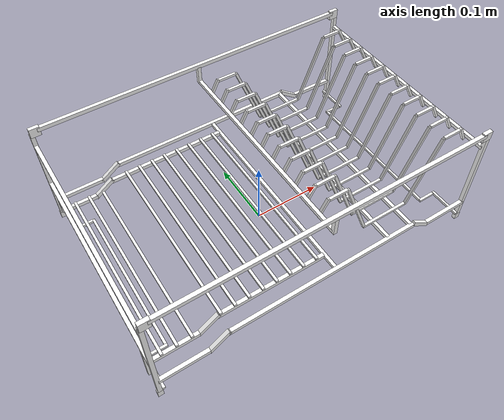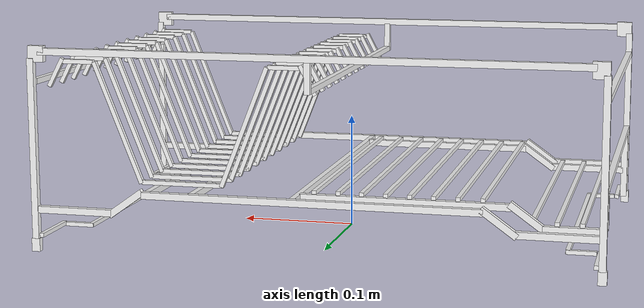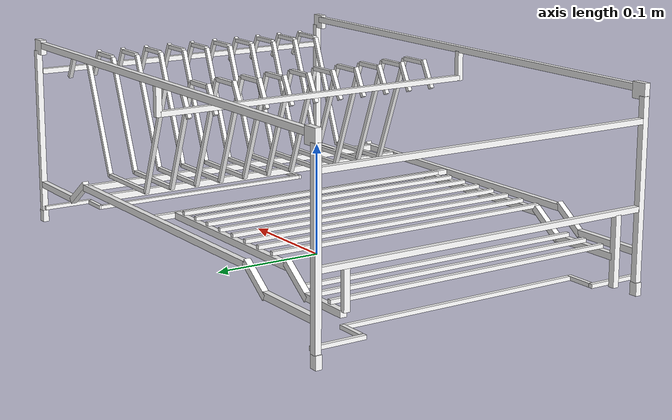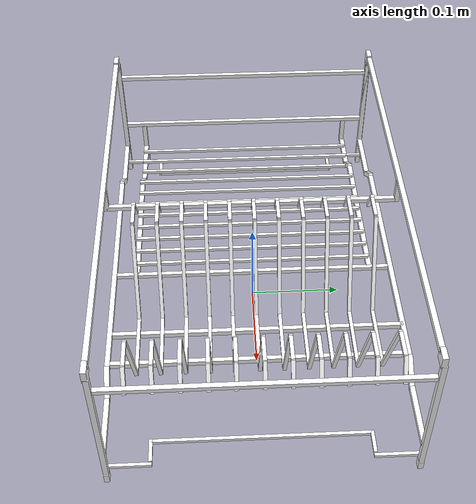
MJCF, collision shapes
<?xml version='1.0' encoding='utf-8'?>
<mujoco model="model">
  <option timestep="0.002" gravity="0.0 0.0 -9.81" />
  <compiler angle="radian" />
  <asset>
    <mesh file="visual/DishRack045.obj" name="DishRack045_vis" />
    <texture file="visual/T_BC001.png" name="DishRack045_material" type="2d" />
    <material name="DishRack045_material" rgba="1 1 1 1.0" texture="DishRack045_material" shininess="0.4472135901451111" specular="0.3103448502657381" />
  </asset>
  <default>
    <default class="visual">
      <geom conaffinity="0" contype="0" group="1" type="mesh" />
    </default>
    <default class="collision">
      <geom group="0" rgba="1 1 1 0.25" density="1.0" solref="0.004 1" solimp="0.998 0.998 0.001" />
    </default>
    <default class="spawn">
      <geom group="0" rgba="1 1 1 0.5" contype="0" conaffinity="0" />
      <site group="0" rgba="1 1 1 0.5" />
    </default>
    <default class="region">
      <geom group="1" conaffinity="0" contype="0" rgba="0 1 0 0" mass="0" />
    </default>
  </default>
  <worldbody>
    <body>
      <body name="object">
        <geom mesh="DishRack045_vis" type="mesh" solimp="0.998 0.998 0.001" solref="0.001 1" friction="0.95 0.3 0.1" class="visual" material="DishRack045_material" />
        <geom type="box" pos="-0.15568196773529053 -0.15602153539657593 0.044882532209157944" size="0.018086088821291924 0.0027107063215225935 0.002855369821190834" quat="0.9520847201347351 0.0 -0.30583450198173523 0.0" class="collision" />
        <geom type="box" pos="-0.20254582166671753 -0.15602153539657593 0.03614291921257973" size="0.033735357224941254 0.0027107063215225935 0.0028553700540214777" quat="1.0 0.0 0.0 0.0" class="collision" />
        <geom type="box" pos="-0.00020116403175052255 -0.15602153539657593 0.052649009972810745" size="0.1428707093000412 0.0027107063215225935 0.002855369821190834" quat="1.0 0.0 0.0 0.0" class="collision" />
        <geom type="box" pos="0.20346175134181976 -0.15602153539657593 0.03614291921257973" size="0.033735357224941254 0.0027107063215225935 0.0028553700540214777" quat="1.0 0.0 0.0 0.0" class="collision" />
        <geom type="box" pos="0.15659789741039276 -0.15602153539657593 0.044882532209157944" size="0.018086088821291924 0.0027107063215225935 0.002855369821190834" quat="0.9520847201347351 0.0 0.30583450198173523 0.0" class="collision" />
        <geom type="box" pos="0.15659789741039276 0.1554446667432785 0.044882532209157944" size="0.018086088821291924 0.0027107063215225935 0.002855369821190834" quat="0.9520847201347351 0.0 0.30583450198173523 0.0" class="collision" />
        <geom type="box" pos="0.20346175134181976 0.1554446667432785 0.03614291921257973" size="0.033735357224941254 0.0027107063215225935 0.0028553700540214777" quat="1.0 0.0 0.0 0.0" class="collision" />
        <geom type="box" pos="-0.00020116403175052255 0.1554446667432785 0.052649009972810745" size="0.1428707093000412 0.0027107063215225935 0.002855369821190834" quat="1.0 0.0 0.0 0.0" class="collision" />
        <geom type="box" pos="-0.20254582166671753 0.1554446667432785 0.03614291921257973" size="0.033735357224941254 0.0027107063215225935 0.0028553700540214777" quat="1.0 0.0 0.0 0.0" class="collision" />
        <geom type="box" pos="-0.15568196773529053 0.1554446667432785 0.044882532209157944" size="0.018086088821291924 0.0027107063215225935 0.002855369821190834" quat="0.9520847201347351 0.0 -0.30583450198173523 0.0" class="collision" />
        <geom type="box" pos="-0.06509390473365784 -0.13054312765598297 0.052649009972810745" size="0.0779779776930809 0.0027107063215225935 0.002855369821190834" quat="1.0 0.0 0.0 0.0" class="collision" />
        <geom type="box" pos="-0.2374083250761032 -0.13054312765598297 0.04092910885810852" size="0.0028117720503360033 0.0027107063215225935 0.030211511999368668" quat="1.0 0.0 0.0 0.0" class="collision" />
        <geom type="box" pos="-0.15568196773529053 -0.13054312765598297 0.044882532209157944" size="0.018086088821291924 0.0027107063215225935 0.002855369821190834" quat="0.9520847201347351 0.0 -0.30583450198173523 0.0" class="collision" />
        <geom type="box" pos="0.10011906176805496 0.0004364773049019277 0.052649009972810745" size="0.0024701603688299656 0.15511955320835114 0.002855369821190834" quat="1.0 0.0 0.0 0.0" class="collision" />
        <geom type="box" pos="0.000725413381587714 -0.00044235959649086 0.05699136108160019" size="0.001849686843343079 0.13268692791461945 0.0017084331484511495" quat="1.0 0.0 0.0 0.0" class="collision" />
        <geom type="box" pos="-0.01939462311565876 -0.00044235959649086 0.05699136108160019" size="0.001849686843343079 0.13268692791461945 0.0017084331484511495" quat="1.0 0.0 0.0 0.0" class="collision" />
        <geom type="box" pos="-0.03928738832473755 -0.00044235959649086 0.05699136108160019" size="0.001849686843343079 0.13268692791461945 0.0017084331484511495" quat="1.0 0.0 0.0 0.0" class="collision" />
        <geom type="box" pos="-0.05940578132867813 -0.00044235959649086 0.05699136108160019" size="0.001849686843343079 0.13268692791461945 0.0017084331484511495" quat="1.0 0.0 0.0 0.0" class="collision" />
        <geom type="box" pos="-0.11919689923524857 -0.00044235959649086 0.05699136108160019" size="0.001849686843343079 0.13268692791461945 0.0017084331484511495" quat="1.0 0.0 0.0 0.0" class="collision" />
        <geom type="box" pos="-0.13935290277004242 -0.00044235959649086 0.05699136108160019" size="0.001849686843343079 0.13268692791461945 0.0017084331484511495" quat="1.0 0.0 0.0 0.0" class="collision" />
        <geom type="box" pos="-0.09927290678024292 -0.00044235959649086 0.05699136108160019" size="0.001849686843343079 0.13268692791461945 0.0017084331484511495" quat="1.0 0.0 0.0 0.0" class="collision" />
        <geom type="box" pos="-0.07945535331964493 -0.00044235959649086 0.05699136108160019" size="0.001849686843343079 0.13268692791461945 0.0017084331484511495" quat="1.0 0.0 0.0 0.0" class="collision" />
        <geom type="box" pos="-0.17887678742408752 -0.00044235959649086 0.04069424420595169" size="0.001849686843343079 0.13268692791461945 0.0017084331484511495" quat="1.0 0.0 0.0 0.0" class="collision" />
        <geom type="box" pos="-0.1992286890745163 -0.00044235959649086 0.04069424420595169" size="0.001849686843343079 0.13268692791461945 0.0017084331484511495" quat="1.0 0.0 0.0 0.0" class="collision" />
        <geom type="box" pos="-0.2375185787677765 -0.0010273384395986795 0.07282046973705292" size="0.0025548783596605062 0.15397219359874725 0.0023582393769174814" quat="1.0 0.0 0.0 0.0" class="collision" />
        <geom type="box" pos="0.13865801692008972 0.0004364773049019277 0.052649009972810745" size="0.0024701603688299656 0.15511955320835114 0.002855369821190834" quat="1.0 0.0 0.0 0.0" class="collision" />
        <geom type="box" pos="0.014439096674323082 -0.0002888697199523449 0.05284624174237251" size="0.0024363165721297264 0.15486814081668854 0.002249937504529953" quat="1.0 0.0 0.0 0.0" class="collision" />
        <geom type="box" pos="-0.17545928061008453 0.1313437819480896 0.044882532209157944" size="0.018086088821291924 0.0027107063215225935 0.002855369821190834" quat="0.9520847201347351 0.0 -0.30583450198173523 0.0" class="collision" />
        <geom type="box" pos="-0.21191519498825073 0.1313437819480896 0.03614291921257973" size="0.024365978315472603 0.0027107063215225935 0.0028553700540214777" quat="1.0 0.0 0.0 0.0" class="collision" />
        <geom type="box" pos="-0.07476115971803665 0.1313437819480896 0.052649009972810745" size="0.08764524757862091 0.0027107063215225935 0.002855369821190834" quat="1.0 0.0 0.0 0.0" class="collision" />
        <geom type="box" pos="-0.20254582166671753 -0.13054312765598297 0.03614291921257973" size="0.033735357224941254 0.0027107063215225935 0.0028553700540214777" quat="1.0 0.0 0.0 0.0" class="collision" />
        <geom type="box" pos="-0.23764225840568542 0.13045234978199005 0.054561614990234375" size="0.002016407670453191 0.0027107063215225935 0.016801709309220314" quat="1.0 0.0 0.0 0.0" class="collision" />
        <geom type="box" pos="-0.2374083250761032 0.15537798404693604 0.08770491182804108" size="0.0028117720503360033 0.0027107063215225935 0.07698731124401093" quat="1.0 0.0 0.0 0.0" class="collision" />
        <geom type="box" pos="-0.23752114176750183 0.15537798404693604 0.005344472825527191" size="0.003646594937890768 0.0027107063215225935 0.00560336047783494" quat="1.0 0.0 0.0 0.0" class="collision" />
        <geom type="box" pos="-0.21942463517189026 -0.00044235959649086 0.04069424420595169" size="0.001849686843343079 0.13268692791461945 0.0017084331484511495" quat="1.0 0.0 0.0 0.0" class="collision" />
        <geom type="box" pos="-0.2375185787677765 -0.0010273384395986795 0.14493751525878906" size="0.0025548783596605062 0.15397219359874725 0.0023582393769174814" quat="1.0 0.0 0.0 0.0" class="collision" />
        <geom type="box" pos="-0.23752114176750183 -0.15517286956310272 0.005344472825527191" size="0.003646594937890768 0.0027107063215225935 0.00560336047783494" quat="1.0 0.0 0.0 0.0" class="collision" />
        <geom type="box" pos="-0.2374083250761032 -0.15517286956310272 0.08770491182804108" size="0.0028117720503360033 0.0027107063215225935 0.07698731124401093" quat="1.0 0.0 0.0 0.0" class="collision" />
        <geom type="box" pos="0.2068399339914322 2.6039342628791928e-05 0.01369159109890461" size="0.001849686843343079 0.11188419908285141 0.0017084331484511495" quat="1.0 0.0 0.0 0.0" class="collision" />
        <geom type="box" pos="0.23303094506263733 0.1332913041114807 0.01369159109890461" size="0.0018061837181448936 0.02378370426595211 0.0017084331484511495" quat="1.0 0.0 0.0 0.0" class="collision" />
        <geom type="box" pos="0.21770724654197693 0.11138457804918289 0.01369159109890461" size="0.012554915621876717 0.0018769720336422324 0.0017084331484511495" quat="1.0 0.0 0.0 0.0" class="collision" />
        <geom type="box" pos="0.21770724654197693 -0.11233498156070709 0.01369159109890461" size="0.012554915621876717 0.0018769720336422324 0.0017084331484511495" quat="1.0 0.0 0.0 0.0" class="collision" />
        <geom type="box" pos="0.23272615671157837 -0.1342417150735855 0.01369159109890461" size="0.0018061837181448936 0.02378370426595211 0.0017084331484511495" quat="1.0 0.0 0.0 0.0" class="collision" />
        <geom type="box" pos="0.0011288374662399292 -0.15602153539657593 0.17055276036262512" size="0.23039209842681885 0.0027107063215225935 0.0028553700540214777" quat="1.0 0.0 0.0 0.0" class="collision" />
        <geom type="box" pos="-0.23260191082954407 -0.15602153539657593 0.16850821673870087" size="0.006894007325172424 0.0027107063215225935 0.006776891648769379" quat="1.0 0.0 0.0 0.0" class="collision" />
        <geom type="box" pos="0.20913073420524597 -0.12508100271224976 0.15891127288341522" size="0.013732441700994968 0.0018984470516443253 0.0017994295340031385" quat="1.0 0.0 0.0 0.0" class="collision" />
        <geom type="box" pos="0.22949133813381195 -0.12508100271224976 0.1490558683872223" size="0.013732441700994968 0.0018984470516443253 0.0017994295340031385" quat="0.8563479781150818 0.0 0.5163992047309875 0.0" class="collision" />
        <geom type="box" pos="0.17433014512062073 -0.12508100271224976 0.10749302059412003" size="0.0018487810157239437 0.0018984470516443253 0.055157992988824844" quat="0.9823158979415894 0.0 0.18723121285438538 0.0" class="collision" />
        <geom type="box" pos="0.1177007332444191 -0.12508100271224976 0.05723894387483597" size="0.03600260615348816 0.0018984470516443253 0.0017994295340031385" quat="1.0 0.0 0.0 0.0" class="collision" />
        <geom type="box" pos="0.06260105967521667 -0.12508100271224976 0.10749302059412003" size="0.0018487810157239437 0.0018984470516443253 0.055157992988824844" quat="0.9823158979415894 0.0 -0.18723121285438538 0.0" class="collision" />
        <geom type="box" pos="0.007439862936735153 -0.12508100271224976 0.1490558683872223" size="0.013732441700994968 0.0018984470516443253 0.0017994295340031385" quat="0.8563479781150818 0.0 -0.5163992047309875 0.0" class="collision" />
        <geom type="box" pos="0.027800459414720535 -0.12508100271224976 0.15891127288341522" size="0.013732441700994968 0.0018984470516443253 0.0017994295340031385" quat="1.0 0.0 0.0 0.0" class="collision" />
        <geom type="box" pos="0.027800459414720535 -0.10022387653589249 0.15891127288341522" size="0.013732441700994968 0.0018984470516443253 0.0017994295340031385" quat="1.0 0.0 0.0 0.0" class="collision" />
        <geom type="box" pos="0.007439862936735153 -0.10022387653589249 0.1490558683872223" size="0.013732441700994968 0.0018984470516443253 0.0017994295340031385" quat="0.8563479781150818 0.0 -0.5163992047309875 0.0" class="collision" />
        <geom type="box" pos="0.06260105967521667 -0.10022387653589249 0.10749302059412003" size="0.0018487810157239437 0.0018984470516443253 0.055157992988824844" quat="0.9823158979415894 0.0 -0.18723121285438538 0.0" class="collision" />
        <geom type="box" pos="0.1177007332444191 -0.10022387653589249 0.05723894387483597" size="0.03600260615348816 0.0018984470516443253 0.0017994295340031385" quat="1.0 0.0 0.0 0.0" class="collision" />
        <geom type="box" pos="0.17433014512062073 -0.10022387653589249 0.10749302059412003" size="0.0018487810157239437 0.0018984470516443253 0.055157992988824844" quat="0.9823158979415894 0.0 0.18723121285438538 0.0" class="collision" />
        <geom type="box" pos="0.22949133813381195 -0.10022387653589249 0.1490558683872223" size="0.013732441700994968 0.0018984470516443253 0.0017994295340031385" quat="0.8563479781150818 0.0 0.5163992047309875 0.0" class="collision" />
        <geom type="box" pos="0.20913073420524597 -0.10022387653589249 0.15891127288341522" size="0.013732441700994968 0.0018984470516443253 0.0017994295340031385" quat="1.0 0.0 0.0 0.0" class="collision" />
        <geom type="box" pos="0.20913073420524597 -0.07502677291631699 0.15891127288341522" size="0.013732441700994968 0.0018984470516443253 0.0017994295340031385" quat="1.0 0.0 0.0 0.0" class="collision" />
        <geom type="box" pos="0.22949133813381195 -0.07502677291631699 0.1490558683872223" size="0.013732441700994968 0.0018984470516443253 0.0017994295340031385" quat="0.8563479781150818 0.0 0.5163992047309875 0.0" class="collision" />
        <geom type="box" pos="0.17433014512062073 -0.07502677291631699 0.10749302059412003" size="0.0018487810157239437 0.0018984470516443253 0.055157992988824844" quat="0.9823158979415894 0.0 0.18723121285438538 0.0" class="collision" />
        <geom type="box" pos="0.1177007332444191 -0.07502677291631699 0.05723894387483597" size="0.03600260615348816 0.0018984470516443253 0.0017994295340031385" quat="1.0 0.0 0.0 0.0" class="collision" />
        <geom type="box" pos="0.06260105967521667 -0.07502677291631699 0.10749302059412003" size="0.0018487810157239437 0.0018984470516443253 0.055157992988824844" quat="0.9823158979415894 0.0 -0.18723121285438538 0.0" class="collision" />
        <geom type="box" pos="0.007439862936735153 -0.07502677291631699 0.1490558683872223" size="0.013732441700994968 0.0018984470516443253 0.0017994295340031385" quat="0.8563479781150818 0.0 -0.5163992047309875 0.0" class="collision" />
        <geom type="box" pos="0.027800459414720535 -0.07502677291631699 0.15891127288341522" size="0.013732441700994968 0.0018984470516443253 0.0017994295340031385" quat="1.0 0.0 0.0 0.0" class="collision" />
        <geom type="box" pos="0.027800459414720535 -0.05009915679693222 0.15891127288341522" size="0.013732441700994968 0.0018984470516443253 0.0017994295340031385" quat="1.0 0.0 0.0 0.0" class="collision" />
        <geom type="box" pos="0.007439862936735153 -0.05009915679693222 0.1490558683872223" size="0.013732441700994968 0.0018984470516443253 0.0017994295340031385" quat="0.8563479781150818 0.0 -0.5163992047309875 0.0" class="collision" />
        <geom type="box" pos="0.06260105967521667 -0.05009915679693222 0.10749302059412003" size="0.0018487810157239437 0.0018984470516443253 0.055157992988824844" quat="0.9823158979415894 0.0 -0.18723121285438538 0.0" class="collision" />
        <geom type="box" pos="0.1177007332444191 -0.05009915679693222 0.05723894387483597" size="0.03600260615348816 0.0018984470516443253 0.0017994295340031385" quat="1.0 0.0 0.0 0.0" class="collision" />
        <geom type="box" pos="0.17433014512062073 -0.05009915679693222 0.10749302059412003" size="0.0018487810157239437 0.0018984470516443253 0.055157992988824844" quat="0.9823158979415894 0.0 0.18723121285438538 0.0" class="collision" />
        <geom type="box" pos="0.22949133813381195 -0.05009915679693222 0.1490558683872223" size="0.013732441700994968 0.0018984470516443253 0.0017994295340031385" quat="0.8563479781150818 0.0 0.5163992047309875 0.0" class="collision" />
        <geom type="box" pos="0.20913073420524597 -0.05009915679693222 0.15891127288341522" size="0.013732441700994968 0.0018984470516443253 0.0017994295340031385" quat="1.0 0.0 0.0 0.0" class="collision" />
        <geom type="box" pos="0.20913073420524597 -0.025306282564997673 0.15891127288341522" size="0.013732441700994968 0.0018984470516443253 0.0017994295340031385" quat="1.0 0.0 0.0 0.0" class="collision" />
        <geom type="box" pos="0.22949133813381195 -0.025306282564997673 0.1490558683872223" size="0.013732441700994968 0.0018984470516443253 0.0017994295340031385" quat="0.8563479781150818 0.0 0.5163992047309875 0.0" class="collision" />
        <geom type="box" pos="0.17433014512062073 -0.025306284427642822 0.10749302059412003" size="0.0018487810157239437 0.0018984470516443253 0.055157992988824844" quat="0.9823158979415894 0.0 0.18723121285438538 0.0" class="collision" />
        <geom type="box" pos="0.1177007332444191 -0.025306282564997673 0.05723894387483597" size="0.03600260615348816 0.0018984470516443253 0.0017994295340031385" quat="1.0 0.0 0.0 0.0" class="collision" />
        <geom type="box" pos="0.06260105967521667 -0.025306284427642822 0.10749302059412003" size="0.0018487810157239437 0.0018984470516443253 0.055157992988824844" quat="0.9823158979415894 0.0 -0.18723121285438538 0.0" class="collision" />
        <geom type="box" pos="0.007439862936735153 -0.025306284427642822 0.1490558683872223" size="0.013732441700994968 0.0018984470516443253 0.0017994295340031385" quat="0.8563479781150818 0.0 -0.5163992047309875 0.0" class="collision" />
        <geom type="box" pos="0.027800459414720535 -0.025306284427642822 0.15891127288341522" size="0.013732441700994968 0.0018984470516443253 0.0017994295340031385" quat="1.0 0.0 0.0 0.0" class="collision" />
        <geom type="box" pos="0.027800459414720535 2.5561079382896423e-05 0.15891127288341522" size="0.013732441700994968 0.0018984470516443253 0.0017994295340031385" quat="1.0 0.0 0.0 0.0" class="collision" />
        <geom type="box" pos="0.007439862936735153 2.5561079382896423e-05 0.1490558683872223" size="0.013732441700994968 0.0018984470516443253 0.0017994295340031385" quat="0.8563479781150818 0.0 -0.5163992047309875 0.0" class="collision" />
        <geom type="box" pos="0.06260105967521667 2.5561079382896423e-05 0.10749302059412003" size="0.0018487810157239437 0.0018984470516443253 0.055157992988824844" quat="0.9823158979415894 0.0 -0.18723121285438538 0.0" class="collision" />
        <geom type="box" pos="0.1177007332444191 2.5562019800418057e-05 0.05723894387483597" size="0.03600260615348816 0.0018984470516443253 0.0017994295340031385" quat="1.0 0.0 0.0 0.0" class="collision" />
        <geom type="box" pos="0.17433014512062073 2.5561079382896423e-05 0.10749302059412003" size="0.0018487810157239437 0.0018984470516443253 0.055157992988824844" quat="0.9823158979415894 0.0 0.18723121285438538 0.0" class="collision" />
        <geom type="box" pos="0.22949133813381195 2.5562019800418057e-05 0.1490558683872223" size="0.013732441700994968 0.0018984470516443253 0.0017994295340031385" quat="0.8563479781150818 0.0 0.5163992047309875 0.0" class="collision" />
        <geom type="box" pos="0.20913073420524597 2.5562019800418057e-05 0.15891127288341522" size="0.013732441700994968 0.0018984470516443253 0.0017994295340031385" quat="1.0 0.0 0.0 0.0" class="collision" />
        <geom type="box" pos="0.20913073420524597 0.02495317906141281 0.15891127288341522" size="0.013732441700994968 0.0018984470516443253 0.0017994295340031385" quat="1.0 0.0 0.0 0.0" class="collision" />
        <geom type="box" pos="0.22949133813381195 0.02495317906141281 0.1490558683872223" size="0.013732441700994968 0.0018984470516443253 0.0017994295340031385" quat="0.8563479781150818 0.0 0.5163992047309875 0.0" class="collision" />
        <geom type="box" pos="0.17433014512062073 0.024953177198767662 0.10749302059412003" size="0.0018487810157239437 0.0018984470516443253 0.055157992988824844" quat="0.9823158979415894 0.0 0.18723121285438538 0.0" class="collision" />
        <geom type="box" pos="0.1177007332444191 0.02495317906141281 0.05723894387483597" size="0.03600260615348816 0.0018984470516443253 0.0017994295340031385" quat="1.0 0.0 0.0 0.0" class="collision" />
        <geom type="box" pos="0.06260105967521667 0.024953177198767662 0.10749302059412003" size="0.0018487810157239437 0.0018984470516443253 0.055157992988824844" quat="0.9823158979415894 0.0 -0.18723121285438538 0.0" class="collision" />
        <geom type="box" pos="0.007439862936735153 0.024953177198767662 0.1490558683872223" size="0.013732441700994968 0.0018984470516443253 0.0017994295340031385" quat="0.8563479781150818 0.0 -0.5163992047309875 0.0" class="collision" />
        <geom type="box" pos="0.027800459414720535 0.024953177198767662 0.15891127288341522" size="0.013732441700994968 0.0018984470516443253 0.0017994295340031385" quat="1.0 0.0 0.0 0.0" class="collision" />
        <geom type="box" pos="0.027800459414720535 0.05015027895569801 0.15891127288341522" size="0.013732441700994968 0.0018984470516443253 0.0017994295340031385" quat="1.0 0.0 0.0 0.0" class="collision" />
        <geom type="box" pos="0.007439862936735153 0.05015027895569801 0.1490558683872223" size="0.013732441700994968 0.0018984470516443253 0.0017994295340031385" quat="0.8563479781150818 0.0 -0.5163992047309875 0.0" class="collision" />
        <geom type="box" pos="0.06260105967521667 0.05015027895569801 0.10749302059412003" size="0.0018487810157239437 0.0018984470516443253 0.055157992988824844" quat="0.9823158979415894 0.0 -0.18723121285438538 0.0" class="collision" />
        <geom type="box" pos="0.1177007332444191 0.05015027895569801 0.05723894387483597" size="0.03600260615348816 0.0018984470516443253 0.0017994295340031385" quat="1.0 0.0 0.0 0.0" class="collision" />
        <geom type="box" pos="0.17433014512062073 0.05015027895569801 0.10749302059412003" size="0.0018487810157239437 0.0018984470516443253 0.055157992988824844" quat="0.9823158979415894 0.0 0.18723121285438538 0.0" class="collision" />
        <geom type="box" pos="0.22949133813381195 0.05015027895569801 0.1490558683872223" size="0.013732441700994968 0.0018984470516443253 0.0017994295340031385" quat="0.8563479781150818 0.0 0.5163992047309875 0.0" class="collision" />
        <geom type="box" pos="0.20913073420524597 0.05015027895569801 0.15891127288341522" size="0.013732441700994968 0.0018984470516443253 0.0017994295340031385" quat="1.0 0.0 0.0 0.0" class="collision" />
        <geom type="box" pos="0.20913073420524597 0.07494315505027771 0.15891127288341522" size="0.013732441700994968 0.0018984470516443253 0.0017994295340031385" quat="1.0 0.0 0.0 0.0" class="collision" />
        <geom type="box" pos="0.22949133813381195 0.07494315505027771 0.1490558683872223" size="0.013732441700994968 0.0018984470516443253 0.0017994295340031385" quat="0.8563479781150818 0.0 0.5163992047309875 0.0" class="collision" />
        <geom type="box" pos="0.17433014512062073 0.07494315505027771 0.10749302059412003" size="0.0018487810157239437 0.0018984470516443253 0.055157992988824844" quat="0.9823158979415894 0.0 0.18723121285438538 0.0" class="collision" />
        <geom type="box" pos="0.1177007332444191 0.07494315505027771 0.05723894387483597" size="0.03600260615348816 0.0018984470516443253 0.0017994295340031385" quat="1.0 0.0 0.0 0.0" class="collision" />
        <geom type="box" pos="0.06260105967521667 0.07494315505027771 0.10749302059412003" size="0.0018487810157239437 0.0018984470516443253 0.055157992988824844" quat="0.9823158979415894 0.0 -0.18723121285438538 0.0" class="collision" />
        <geom type="box" pos="0.007439862936735153 0.07494315505027771 0.1490558683872223" size="0.013732441700994968 0.0018984470516443253 0.0017994295340031385" quat="0.8563479781150818 0.0 -0.5163992047309875 0.0" class="collision" />
        <geom type="box" pos="0.027800459414720535 0.07494315505027771 0.15891127288341522" size="0.013732441700994968 0.0018984470516443253 0.0017994295340031385" quat="1.0 0.0 0.0 0.0" class="collision" />
        <geom type="box" pos="0.027800459414720535 0.09987077116966248 0.15891127288341522" size="0.013732441700994968 0.0018984470516443253 0.0017994295340031385" quat="1.0 0.0 0.0 0.0" class="collision" />
        <geom type="box" pos="0.007439862936735153 0.09987077116966248 0.1490558683872223" size="0.013732441700994968 0.0018984470516443253 0.0017994295340031385" quat="0.8563479781150818 0.0 -0.5163992047309875 0.0" class="collision" />
        <geom type="box" pos="0.06260105967521667 0.09987077116966248 0.10749302059412003" size="0.0018487810157239437 0.0018984470516443253 0.055157992988824844" quat="0.9823158979415894 0.0 -0.18723121285438538 0.0" class="collision" />
        <geom type="box" pos="0.1177007332444191 0.09987077116966248 0.05723894387483597" size="0.03600260615348816 0.0018984470516443253 0.0017994295340031385" quat="1.0 0.0 0.0 0.0" class="collision" />
        <geom type="box" pos="0.17433014512062073 0.09987077116966248 0.10749302059412003" size="0.0018487810157239437 0.0018984470516443253 0.055157992988824844" quat="0.9823158979415894 0.0 0.18723121285438538 0.0" class="collision" />
        <geom type="box" pos="0.22949133813381195 0.09987077116966248 0.1490558683872223" size="0.013732441700994968 0.0018984470516443253 0.0017994295340031385" quat="0.8563479781150818 0.0 0.5163992047309875 0.0" class="collision" />
        <geom type="box" pos="0.20913073420524597 0.09987077116966248 0.15891127288341522" size="0.013732441700994968 0.0018984470516443253 0.0017994295340031385" quat="1.0 0.0 0.0 0.0" class="collision" />
        <geom type="box" pos="0.20913073420524597 0.12506787478923798 0.15891127288341522" size="0.013732441700994968 0.0018984470516443253 0.0017994295340031385" quat="1.0 0.0 0.0 0.0" class="collision" />
        <geom type="box" pos="0.22949133813381195 0.12506787478923798 0.1490558683872223" size="0.013732441700994968 0.0018984470516443253 0.0017994295340031385" quat="0.8563479781150818 0.0 0.5163992047309875 0.0" class="collision" />
        <geom type="box" pos="0.17433014512062073 0.12506787478923798 0.10749302059412003" size="0.0018487810157239437 0.0018984470516443253 0.055157992988824844" quat="0.9823158979415894 0.0 0.18723121285438538 0.0" class="collision" />
        <geom type="box" pos="0.1177007332444191 0.12506787478923798 0.05723894387483597" size="0.03600260615348816 0.0018984470516443253 0.0017994295340031385" quat="1.0 0.0 0.0 0.0" class="collision" />
        <geom type="box" pos="0.06260105967521667 0.12506787478923798 0.10749302059412003" size="0.0018487810157239437 0.0018984470516443253 0.055157992988824844" quat="0.9823158979415894 0.0 -0.18723121285438538 0.0" class="collision" />
        <geom type="box" pos="0.007439862936735153 0.12506787478923798 0.1490558683872223" size="0.013732441700994968 0.0018984470516443253 0.0017994295340031385" quat="0.8563479781150818 0.0 -0.5163992047309875 0.0" class="collision" />
        <geom type="box" pos="0.027800459414720535 0.12506787478923798 0.15891127288341522" size="0.013732441700994968 0.0018984470516443253 0.0017994295340031385" quat="1.0 0.0 0.0 0.0" class="collision" />
        <geom type="box" pos="-6.252899765968323e-06 -0.0010273384395986795 0.14409276843070984" size="0.0025548783596605062 0.15397219359874725 0.0023582393769174814" quat="1.0 0.0 0.0 0.0" class="collision" />
        <geom type="box" pos="-6.252899765968323e-06 -0.15546384453773499 0.1553255170583725" size="0.0025548783596605062 0.002627863083034754 0.013590995222330093" quat="1.0 0.0 0.0 0.0" class="collision" />
        <geom type="box" pos="-6.2530170907848515e-06 0.1544990986585617 0.1553255170583725" size="0.0025548783596605062 0.002627863083034754 0.013590995222330093" quat="1.0 0.0 0.0 0.0" class="collision" />
        <geom type="box" pos="0.23322182893753052 -0.15602153539657593 0.16850821673870087" size="0.006894007325172424 0.0027107063215225935 0.006776891648769379" quat="1.0 0.0 0.0 0.0" class="collision" />
        <geom type="box" pos="0.23802824318408966 -0.15517286956310272 0.08770491182804108" size="0.0028117720503360033 0.0027107063215225935 0.07698731124401093" quat="1.0 0.0 0.0 0.0" class="collision" />
        <geom type="box" pos="0.23814105987548828 -0.15517286956310272 0.005344472825527191" size="0.003646594937890768 0.0027107063215225935 0.00560336047783494" quat="1.0 0.0 0.0 0.0" class="collision" />
        <geom type="box" pos="0.23814105987548828 0.1557704359292984 0.005344472825527191" size="0.003646594937890768 0.0027107063215225935 0.00560336047783494" quat="1.0 0.0 0.0 0.0" class="collision" />
        <geom type="box" pos="0.23802824318408966 0.1557704359292984 0.08770491182804108" size="0.0028117720503360033 0.0027107063215225935 0.07698731124401093" quat="1.0 0.0 0.0 0.0" class="collision" />
        <geom type="box" pos="0.23322182893753052 0.1549217700958252 0.16850821673870087" size="0.006894007325172424 0.0027107063215225935 0.006776891648769379" quat="1.0 0.0 0.0 0.0" class="collision" />
        <geom type="box" pos="-0.23260191082954407 0.1549217700958252 0.16850821673870087" size="0.006894007325172424 0.0027107063215225935 0.006776891648769379" quat="1.0 0.0 0.0 0.0" class="collision" />
        <geom type="box" pos="0.0011288374662399292 0.1549217700958252 0.17055276036262512" size="0.23039209842681885 0.0027107063215225935 0.0028553700540214777" quat="1.0 0.0 0.0 0.0" class="collision" />
        <geom type="box" pos="-0.2374083250761032 0.1557704359292984 0.08770491182804108" size="0.0028117720503360033 0.0027107063215225935 0.07698731124401093" quat="1.0 0.0 0.0 0.0" class="collision" />
        <geom type="box" pos="0.23686254024505615 -0.0010273384395986795 0.14493751525878906" size="0.0025548783596605062 0.15397219359874725 0.0023582393769174814" quat="1.0 0.0 0.0 0.0" class="collision" />
        <geom type="box" pos="-0.23227845132350922 -0.1342417150735855 0.01369159109890461" size="0.0018061837181448936 0.02378370426595211 0.0017084331484511495" quat="1.0 0.0 0.0 0.0" class="collision" />
        <geom type="box" pos="-0.21725954115390778 -0.11233498156070709 0.01369159109890461" size="0.012554915621876717 0.0018769720336422324 0.0017084331484511495" quat="1.0 0.0 0.0 0.0" class="collision" />
        <geom type="box" pos="-0.21725954115390778 0.11138457804918289 0.01369159109890461" size="0.012554915621876717 0.0018769720336422324 0.0017084331484511495" quat="1.0 0.0 0.0 0.0" class="collision" />
        <geom type="box" pos="-0.23258323967456818 0.1332913041114807 0.01369159109890461" size="0.0018061837181448936 0.02378370426595211 0.0017084331484511495" quat="1.0 0.0 0.0 0.0" class="collision" />
        <geom type="box" pos="-0.20639222860336304 2.6039342628791928e-05 0.01369159109890461" size="0.001849686843343079 0.11188419908285141 0.0017084331484511495" quat="1.0 0.0 0.0 0.0" class="collision" />
        <geom class="region" name="reg_int_0" type="box" pos="-0.11873077601194382 -0.00043182820081710815 0.18252884596586227" size="0.1134785915017128 0.14963655716180801 0.1222427094578743" />
        <geom class="region" name="reg_int_1" type="box" pos="0.11851932853460312 -0.00043182820081710815 0.18252884224057198" size="0.034385224640369416 0.14963655716180801 0.1222427131831646" />
        <geom size="0.24342028 0.16228019 0.08809496" pos="-0.0 -0.0 0.0" name="reg_bbox" class="region" type="box" quat="1.0 0.0 0.0 0.0" />
        </body>
    </body>
  </worldbody>
  <actuator />
</mujoco>
